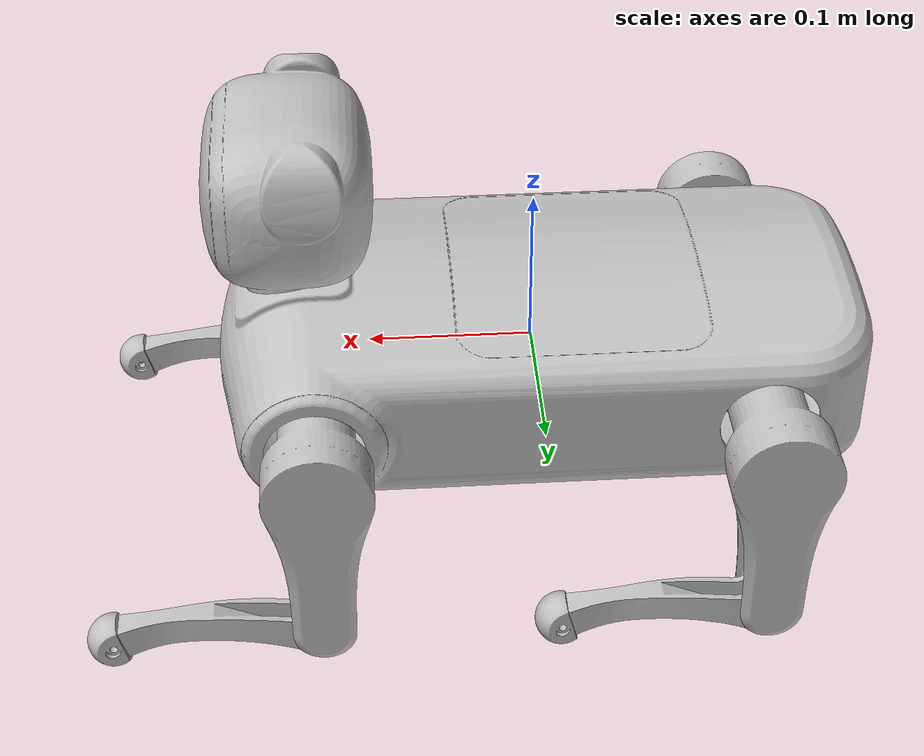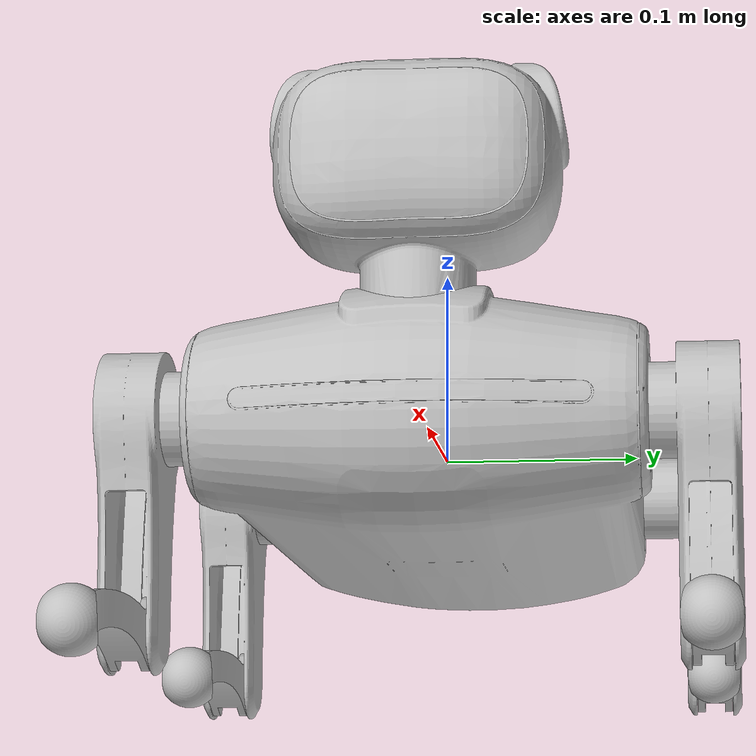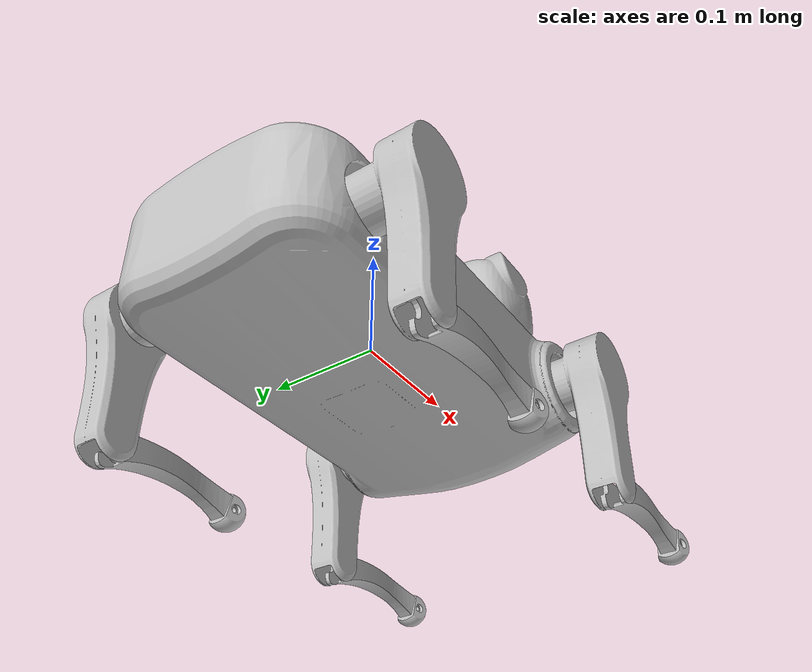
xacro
<?xml version="1.0"?>
<robot name="trotbot" xmlns:xacro="http://ros.org/wiki/xacro">
  <xacro:arg name="model_r" default="0.75294"/>
  <xacro:arg name="model_g" default="0.75294"/>
  <xacro:arg name="model_b" default="0.75294"/>
  <xacro:arg name="model_a" default="1.0"/>
  <!-- 分部件配色：默认回退到 model_*，传参即可分件着色 -->
  <xacro:arg name="body_r" default="$(arg model_r)"/>
  <xacro:arg name="body_g" default="$(arg model_g)"/>
  <xacro:arg name="body_b" default="$(arg model_b)"/>
  <xacro:arg name="body_a" default="$(arg model_a)"/>
  <xacro:arg name="head_r" default="$(arg model_r)"/>
  <xacro:arg name="head_g" default="$(arg model_g)"/>
  <xacro:arg name="head_b" default="$(arg model_b)"/>
  <xacro:arg name="head_a" default="$(arg model_a)"/>
  <xacro:arg name="thigh_r" default="$(arg model_r)"/>
  <xacro:arg name="thigh_g" default="$(arg model_g)"/>
  <xacro:arg name="thigh_b" default="$(arg model_b)"/>
  <xacro:arg name="thigh_a" default="$(arg model_a)"/>
  <xacro:arg name="calf_r" default="$(arg model_r)"/>
  <xacro:arg name="calf_g" default="$(arg model_g)"/>
  <xacro:arg name="calf_b" default="$(arg model_b)"/>
  <xacro:arg name="calf_a" default="$(arg model_a)"/>
  <xacro:arg name="foot_r" default="$(arg model_r)"/>
  <xacro:arg name="foot_g" default="$(arg model_g)"/>
  <xacro:arg name="foot_b" default="$(arg model_b)"/>
  <xacro:arg name="foot_a" default="$(arg model_a)"/>
  <xacro:property name="mesh_dir" value="file://$(find trotbot)/meshes/minidog"/>
  <xacro:property name="knee_y_merged" value="0.081"/>

  <link name="base_link">
    <inertial>
      <origin xyz="0.00821482 0.00020218 0.00424442" rpy="0 0 0"/>
      <mass value="2.7673"/>
      <inertia ixx="0.00998124" ixy="9.82E-06" ixz="-0.00257876" iyy="0.02546149" iyz="-1.318E-05" izz="0.02812534"/>
    </inertial>
    <visual>
      <origin xyz="0 0 0" rpy="0 0 0"/>
      <geometry>
        <mesh filename="${mesh_dir}/base_body.STL"/>
      </geometry>
      <material name="">
        <color rgba="$(arg body_r) $(arg body_g) $(arg body_b) $(arg body_a)"/>
      </material>
    </visual>
    <collision>
      <origin xyz="0 0 0" rpy="0 0 0"/>
      <geometry>
        <box size="0.194 0.16 0.07"/>
      </geometry>
    </collision>
    <collision>
      <origin xyz="0.2 0 0.03" rpy="0 1.57079632 0"/>
      <geometry>
        <cylinder length="0.025" radius="0.02"/>
      </geometry>
    </collision>
  </link>

  <!-- 头部：base.STL 中头部几何已拆为 base_head.STL，独立链接便于单独着色 -->
  <link name="head">
    <inertial>
      <origin xyz="0 0 0" rpy="0 0 0"/>
      <mass value="0.01"/>
      <inertia ixx="1e-06" ixy="0" ixz="0" iyy="1e-06" iyz="0" izz="1e-06"/>
    </inertial>
    <visual>
      <origin xyz="0 0 0" rpy="0 0 0"/>
      <geometry>
        <mesh filename="${mesh_dir}/base_head.STL"/>
      </geometry>
      <material name="">
        <color rgba="$(arg head_r) $(arg head_g) $(arg head_b) $(arg head_a)"/>
      </material>
    </visual>
  </link>
  <joint name="base_head" type="fixed">
    <origin xyz="0 0 0" rpy="0 0 0"/>
    <parent link="base_link"/>
    <child link="head"/>
  </joint>

  <!-- Left front -->
  <link name="lf1">
    <inertial>
      <origin xyz="0.03515121 -0.00140177 9.224E-05" rpy="0 0 0"/>
      <mass value="0.28323"/>
      <inertia ixx="8.573E-05" ixy="1.77E-06" ixz="-9E-08" iyy="9.68E-05" iyz="4.9E-07" izz="9.864E-05"/>
    </inertial>
    <visual>
      <origin xyz="0 0 0" rpy="0 0 0"/>
      <geometry>
        <mesh filename="${mesh_dir}/lf_hip.STL"/>
      </geometry>
      <material name="">
        <color rgba="$(arg body_r) $(arg body_g) $(arg body_b) $(arg body_a)"/>
      </material>
    </visual>
    <collision>
      <origin xyz="0.03515121 -0.00140177 9.224E-05" rpy="1.57079632 0 0"/>
      <geometry>
        <cylinder radius="0.028" length="0.04"/>
      </geometry>
    </collision>
  </link>
  <joint name="base_lf1" type="revolute">
    <origin xyz="0.097 0.04 0" rpy="0 0 0"/>
    <parent link="base_link"/>
    <child link="lf1"/>
    <axis xyz="1 0 0"/>
    <limit lower="-3.14" upper="3.14" effort="6" velocity="10.467"/>
  </joint>

  <link name="lf2">
    <inertial>
      <origin xyz="-0.00010595 0.05512752 -0.00907793" rpy="0 0 0"/>
      <mass value="0.42421"/>
      <inertia ixx="0.00057282" ixy="7.38E-06" ixz="-1.032E-05" iyy="0.00042725" iyz="0.00010651" izz="0.0002817"/>
    </inertial>
    <visual>
      <origin xyz="0 -${knee_y_merged} 0" rpy="0 0 0"/>
      <geometry>
        <mesh filename="${mesh_dir}/lf_thigh.STL"/>
      </geometry>
      <material name="">
        <color rgba="$(arg thigh_r) $(arg thigh_g) $(arg thigh_b) $(arg thigh_a)"/>
      </material>
    </visual>
    <collision>
      <origin xyz="-0.00010595 -0.02587248 -0.00907793" rpy="0 0 0"/>
      <geometry>
        <box size="0.03 0.03 0.05"/>
      </geometry>
    </collision>
  </link>
  <joint name="lf1_lf2" type="revolute">
    <!-- 0.017 + 0.081 from original knee y (merged for Champ planar leg model) -->
    <origin xyz="0.037 0.098 0" rpy="0 0 0"/>
    <parent link="lf1"/>
    <child link="lf2"/>
    <axis xyz="0 1 0"/>
    <limit lower="-2.6167" upper="2.6167" effort="6" velocity="10.467"/>
  </joint>

  <link name="lf3">
    <inertial>
      <origin xyz="0.00275232 0 -0.02972173" rpy="0 0 0"/>
      <mass value="0.045248"/>
      <inertia ixx="7.175E-05" ixy="0" ixz="3.98E-06" iyy="7.314E-05" iyz="0" izz="3.66E-06"/>
    </inertial>
    <visual>
      <origin xyz="0 0 0" rpy="0 0 0"/>
      <geometry>
        <mesh filename="${mesh_dir}/lf_calf.STL"/>
      </geometry>
      <material name="">
        <color rgba="$(arg calf_r) $(arg calf_g) $(arg calf_b) $(arg calf_a)"/>
      </material>
    </visual>
    <collision>
      <origin xyz="0.00275232 0 -0.02972173" rpy="0 0 0"/>
      <geometry>
        <box size="0.015 0.015 0.05"/>
      </geometry>
    </collision>
  </link>
  <joint name="lf2_lf3" type="revolute">
    <origin xyz="0 0 -0.105" rpy="0 0 0"/>
    <parent link="lf2"/>
    <child link="lf3"/>
    <axis xyz="0 1 0"/>
    <limit lower="-2.5469" upper="-0.48844" effort="6" velocity="10.467"/>
  </joint>

  <link name="lffoot">
    <inertial>
      <origin xyz="-0.0005743 -0.00010766 -0.0027789" rpy="0 0 0"/>
      <mass value="0.014945"/>
      <inertia ixx="1E-06" ixy="0" ixz="6E-08" iyy="1.06E-06" iyz="0" izz="1.3E-06"/>
    </inertial>
    <visual>
      <origin xyz="0 0 0" rpy="0 0 0"/>
      <geometry>
        <mesh filename="${mesh_dir}/lf_foot.STL"/>
      </geometry>
      <material name="">
        <color rgba="$(arg foot_r) $(arg foot_g) $(arg foot_b) $(arg foot_a)"/>
      </material>
    </visual>
    <collision>
      <origin xyz="-0.0005743 -0.00010766 -0.0027789" rpy="0 0 0"/>
      <geometry>
        <sphere radius="0.015"/>
      </geometry>
    </collision>
  </link>
  <joint name="lf3_lffoot" type="fixed">
    <origin xyz="0 0 -0.12589" rpy="0 0 0"/>
    <parent link="lf3"/>
    <child link="lffoot"/>
  </joint>

  <!-- Right front -->
  <link name="rf1">
    <inertial>
      <origin xyz="0.03515121 0.00140177 -9.224E-05" rpy="0 0 0"/>
      <mass value="0.28323"/>
      <inertia ixx="8.573E-05" ixy="-1.77E-06" ixz="9E-08" iyy="9.68E-05" iyz="4.9E-07" izz="9.864E-05"/>
    </inertial>
    <visual>
      <origin xyz="0 0 0" rpy="0 0 0"/>
      <geometry>
        <mesh filename="${mesh_dir}/rf_hip.STL"/>
      </geometry>
      <material name="">
        <color rgba="$(arg body_r) $(arg body_g) $(arg body_b) $(arg body_a)"/>
      </material>
    </visual>
    <collision>
      <origin xyz="0.03515121 0.00140177 -9.224E-05" rpy="1.57079632 0 0"/>
      <geometry>
        <cylinder radius="0.028" length="0.04"/>
      </geometry>
    </collision>
  </link>
  <joint name="base_rf1" type="revolute">
    <origin xyz="0.097 -0.04 0" rpy="0 0 0"/>
    <parent link="base_link"/>
    <child link="rf1"/>
    <axis xyz="1 0 0"/>
    <limit lower="-3.14" upper="3.14" effort="6" velocity="10.467"/>
  </joint>

  <link name="rf2">
    <inertial>
      <origin xyz="6.646E-05 -0.05491633 -0.00912824" rpy="0 0 0"/>
      <mass value="0.42559"/>
      <inertia ixx="0.00057366" ixy="-9.7E-06" ixz="-1.102E-05" iyy="0.00042739" iyz="-0.00010638" izz="0.00028519"/>
    </inertial>
    <visual>
      <origin xyz="0 ${knee_y_merged} 0" rpy="0 0 0"/>
      <geometry>
        <mesh filename="${mesh_dir}/rf_thigh.STL"/>
      </geometry>
      <material name="">
        <color rgba="$(arg thigh_r) $(arg thigh_g) $(arg thigh_b) $(arg thigh_a)"/>
      </material>
    </visual>
    <collision>
      <origin xyz="6.646E-05 0.02608367 -0.00912824" rpy="0 0 0"/>
      <geometry>
        <box size="0.03 0.03 0.05"/>
      </geometry>
    </collision>
  </link>
  <joint name="rf1_rf2" type="revolute">
    <origin xyz="0.037 -0.098 0" rpy="0 0 0"/>
    <parent link="rf1"/>
    <child link="rf2"/>
    <axis xyz="0 1 0"/>
    <limit lower="-2.6167" upper="2.6167" effort="6" velocity="10.467"/>
  </joint>

  <link name="rf3">
    <inertial>
      <origin xyz="0.00275232 0 -0.02972173" rpy="0 0 0"/>
      <mass value="0.045248"/>
      <inertia ixx="7.175E-05" ixy="0" ixz="3.98E-06" iyy="7.314E-05" iyz="0" izz="3.66E-06"/>
    </inertial>
    <visual>
      <origin xyz="0 0 0" rpy="0 0 0"/>
      <geometry>
        <mesh filename="${mesh_dir}/rf_calf.STL"/>
      </geometry>
      <material name="">
        <color rgba="$(arg calf_r) $(arg calf_g) $(arg calf_b) $(arg calf_a)"/>
      </material>
    </visual>
    <collision>
      <origin xyz="0.00275232 0 -0.02972173" rpy="0 0 0"/>
      <geometry>
        <box size="0.03 0.03 0.05"/>
      </geometry>
    </collision>
  </link>
  <joint name="rf2_rf3" type="revolute">
    <origin xyz="0 0 -0.105" rpy="0 0 0"/>
    <parent link="rf2"/>
    <child link="rf3"/>
    <axis xyz="0 1 0"/>
    <limit lower="-2.5469" upper="-0.48844" effort="6" velocity="10.467"/>
  </joint>

  <link name="rffoot">
    <inertial>
      <origin xyz="-0.0005743 -0.00010766 -0.0027789" rpy="0 0 0"/>
      <mass value="0.014945"/>
      <inertia ixx="1E-06" ixy="0" ixz="6E-08" iyy="1.06E-06" iyz="0" izz="1.3E-06"/>
    </inertial>
    <visual>
      <origin xyz="0 0 0" rpy="0 0 0"/>
      <geometry>
        <mesh filename="${mesh_dir}/rf_foot.STL"/>
      </geometry>
      <material name="">
        <color rgba="$(arg foot_r) $(arg foot_g) $(arg foot_b) $(arg foot_a)"/>
      </material>
    </visual>
    <collision>
      <origin xyz="-0.0005743 -0.00010766 -0.0027789" rpy="0 0 0"/>
      <geometry>
        <sphere radius="0.015"/>
      </geometry>
    </collision>
  </link>
  <joint name="rf3_rffoot" type="fixed">
    <origin xyz="0 0 -0.12589" rpy="0 0 0"/>
    <parent link="rf3"/>
    <child link="rffoot"/>
  </joint>

  <!-- Left hind (minidog lr_* -> lb*) -->
  <link name="lb1">
    <inertial>
      <origin xyz="-0.03515121 -0.00140177 -9.224E-05" rpy="0 0 0"/>
      <mass value="0.28323"/>
      <inertia ixx="8.573E-05" ixy="-1.77E-06" ixz="-9E-08" iyy="9.68E-05" iyz="-4.9E-07" izz="9.864E-05"/>
    </inertial>
    <visual>
      <origin xyz="0 0 0" rpy="0 0 0"/>
      <geometry>
        <mesh filename="${mesh_dir}/lr_hip.STL"/>
      </geometry>
      <material name="">
        <color rgba="$(arg body_r) $(arg body_g) $(arg body_b) $(arg body_a)"/>
      </material>
    </visual>
    <collision>
      <origin xyz="-0.03515121 -0.00140177 -9.224E-05" rpy="1.57079632 0 0"/>
      <geometry>
        <cylinder radius="0.028" length="0.04"/>
      </geometry>
    </collision>
  </link>
  <joint name="base_lb1" type="revolute">
    <origin xyz="-0.097 0.04 0" rpy="0 0 0"/>
    <parent link="base_link"/>
    <child link="lb1"/>
    <axis xyz="1 0 0"/>
    <limit lower="-3.14" upper="3.14" effort="6" velocity="10.467"/>
  </joint>

  <link name="lb2">
    <inertial>
      <origin xyz="-0.00043375 0.05495689 -0.00971555" rpy="0 0 0"/>
      <mass value="0.41571"/>
      <inertia ixx="0.00055768" ixy="5.8E-07" ixz="-6.79E-06" iyy="0.00041688" iyz="9.683E-05" izz="0.00027342"/>
    </inertial>
    <visual>
      <origin xyz="0 -${knee_y_merged} 0" rpy="0 0 0"/>
      <geometry>
        <mesh filename="${mesh_dir}/lr_thigh.STL"/>
      </geometry>
      <material name="">
        <color rgba="$(arg thigh_r) $(arg thigh_g) $(arg thigh_b) $(arg thigh_a)"/>
      </material>
    </visual>
    <collision>
      <origin xyz="-0.00043375 -0.02604311 -0.00971555" rpy="0 0 0"/>
      <geometry>
        <box size="0.03 0.03 0.05"/>
      </geometry>
    </collision>
  </link>
  <joint name="lb1_lb2" type="revolute">
    <origin xyz="-0.037 0.098 0" rpy="0 0 0"/>
    <parent link="lb1"/>
    <child link="lb2"/>
    <axis xyz="0 1 0"/>
    <limit lower="-2.6167" upper="2.6167" effort="6" velocity="10.467"/>
  </joint>

  <link name="lb3">
    <inertial>
      <origin xyz="0.00275232 0 -0.02972173" rpy="0 0 0"/>
      <mass value="0.045248"/>
      <inertia ixx="7.175E-05" ixy="0" ixz="3.98E-06" iyy="7.314E-05" iyz="0" izz="3.66E-06"/>
    </inertial>
    <visual>
      <origin xyz="0 0 0" rpy="0 0 0"/>
      <geometry>
        <mesh filename="${mesh_dir}/lr_calf.STL"/>
      </geometry>
      <material name="">
        <color rgba="$(arg calf_r) $(arg calf_g) $(arg calf_b) $(arg calf_a)"/>
      </material>
    </visual>
    <collision>
      <origin xyz="0.00275232 0 -0.02972173" rpy="0 0 0"/>
      <geometry>
        <box size="0.015 0.015 0.05"/>
      </geometry>
    </collision>
  </link>
  <joint name="lb2_lb3" type="revolute">
    <origin xyz="0 0 -0.105" rpy="0 0 0"/>
    <parent link="lb2"/>
    <child link="lb3"/>
    <axis xyz="0 1 0"/>
    <limit lower="-2.5469" upper="-0.48844" effort="6" velocity="10.467"/>
  </joint>

  <link name="lbfoot">
    <inertial>
      <origin xyz="-0.0005743 -0.00010766 -0.0027789" rpy="0 0 0"/>
      <mass value="0.014945"/>
      <inertia ixx="1E-06" ixy="0" ixz="6E-08" iyy="1.06E-06" iyz="0" izz="1.3E-06"/>
    </inertial>
    <visual>
      <origin xyz="0 0 0" rpy="0 0 0"/>
      <geometry>
        <mesh filename="${mesh_dir}/lr_foot.STL"/>
      </geometry>
      <material name="">
        <color rgba="$(arg foot_r) $(arg foot_g) $(arg foot_b) $(arg foot_a)"/>
      </material>
    </visual>
    <collision>
      <origin xyz="-0.0005743 -0.00010766 -0.0027789" rpy="0 0 0"/>
      <geometry>
        <sphere radius="0.015"/>
      </geometry>
    </collision>
  </link>
  <joint name="lb3_lbfoot" type="fixed">
    <origin xyz="0 0 -0.12589" rpy="0 0 0"/>
    <parent link="lb3"/>
    <child link="lbfoot"/>
  </joint>

  <!-- Right hind (minidog rr_* -> rb*) -->
  <link name="rb1">
    <inertial>
      <origin xyz="-0.03515121 0.00140177 9.224E-05" rpy="0 0 0"/>
      <mass value="0.28323"/>
      <inertia ixx="8.573E-05" ixy="1.77E-06" ixz="9E-08" iyy="9.68E-05" iyz="-4.9E-07" izz="9.864E-05"/>
    </inertial>
    <visual>
      <origin xyz="0 0 0" rpy="0 0 0"/>
      <geometry>
        <mesh filename="${mesh_dir}/rr_hip.STL"/>
      </geometry>
      <material name="">
        <color rgba="$(arg body_r) $(arg body_g) $(arg body_b) $(arg body_a)"/>
      </material>
    </visual>
    <collision>
      <origin xyz="-0.03515121 0.00140177 9.224E-05" rpy="1.57079632 0 0"/>
      <geometry>
        <cylinder radius="0.028" length="0.04"/>
      </geometry>
    </collision>
  </link>
  <joint name="base_rb1" type="revolute">
    <origin xyz="-0.097 -0.04 0" rpy="0 0 0"/>
    <parent link="base_link"/>
    <child link="rb1"/>
    <axis xyz="1 0 0"/>
    <limit lower="-3.14" upper="3.14" effort="6" velocity="10.467"/>
  </joint>

  <link name="rb2">
    <inertial>
      <origin xyz="-0.00053812 -0.05495676 -0.00960878" rpy="0 0 0"/>
      <mass value="0.41571"/>
      <inertia ixx="0.00055765" ixy="4.5E-07" ixz="-6.61E-06" iyy="0.0004175" iyz="-9.783E-05" izz="0.00027407"/>
    </inertial>
    <visual>
      <origin xyz="0 ${knee_y_merged} 0" rpy="0 0 0"/>
      <geometry>
        <mesh filename="${mesh_dir}/rr_thigh.STL"/>
      </geometry>
      <material name="">
        <color rgba="$(arg thigh_r) $(arg thigh_g) $(arg thigh_b) $(arg thigh_a)"/>
      </material>
    </visual>
    <collision>
      <origin xyz="-0.00053812 0.02604324 -0.00960878" rpy="0 0 0"/>
      <geometry>
        <box size="0.03 0.03 0.05"/>
      </geometry>
    </collision>
  </link>
  <joint name="rb1_rb2" type="revolute">
    <origin xyz="-0.037 -0.098 0" rpy="0 0 0"/>
    <parent link="rb1"/>
    <child link="rb2"/>
    <axis xyz="0 1 0"/>
    <limit lower="-2.6167" upper="2.6167" effort="6" velocity="10.467"/>
  </joint>

  <link name="rb3">
    <inertial>
      <origin xyz="0.00275232 0 -0.02972173" rpy="0 0 0"/>
      <mass value="0.045248"/>
      <inertia ixx="7.175E-05" ixy="0" ixz="3.98E-06" iyy="7.314E-05" iyz="0" izz="3.66E-06"/>
    </inertial>
    <visual>
      <origin xyz="0 0 0" rpy="0 0 0"/>
      <geometry>
        <mesh filename="${mesh_dir}/rr_calf.STL"/>
      </geometry>
      <material name="">
        <color rgba="$(arg calf_r) $(arg calf_g) $(arg calf_b) $(arg calf_a)"/>
      </material>
    </visual>
    <collision>
      <origin xyz="0.00275232 0 -0.02972173" rpy="0 0 0"/>
      <geometry>
        <box size="0.015 0.015 0.05"/>
      </geometry>
    </collision>
  </link>
  <joint name="rb2_rb3" type="revolute">
    <origin xyz="0 0 -0.105" rpy="0 0 0"/>
    <parent link="rb2"/>
    <child link="rb3"/>
    <axis xyz="0 1 0"/>
    <limit lower="-2.5469" upper="-0.48844" effort="6" velocity="10.467"/>
  </joint>

  <link name="rbfoot">
    <inertial>
      <origin xyz="-0.0005743 -0.00010766 -0.0027789" rpy="0 0 0"/>
      <mass value="0.014945"/>
      <inertia ixx="1E-06" ixy="0" ixz="6E-08" iyy="1.06E-06" iyz="0" izz="1.3E-06"/>
    </inertial>
    <visual>
      <origin xyz="0 0 0" rpy="0 0 0"/>
      <geometry>
        <mesh filename="${mesh_dir}/rr_foot.STL"/>
      </geometry>
      <material name="">
        <color rgba="$(arg foot_r) $(arg foot_g) $(arg foot_b) $(arg foot_a)"/>
      </material>
    </visual>
    <collision>
      <origin xyz="-0.0005743 -0.00010766 -0.0027789" rpy="0 0 0"/>
      <geometry>
        <sphere radius="0.015"/>
      </geometry>
    </collision>
  </link>
  <joint name="rb3_rbfoot" type="fixed">
    <origin xyz="0 0 -0.12589" rpy="0 0 0"/>
    <parent link="rb3"/>
    <child link="rbfoot"/>
  </joint>
</robot>
